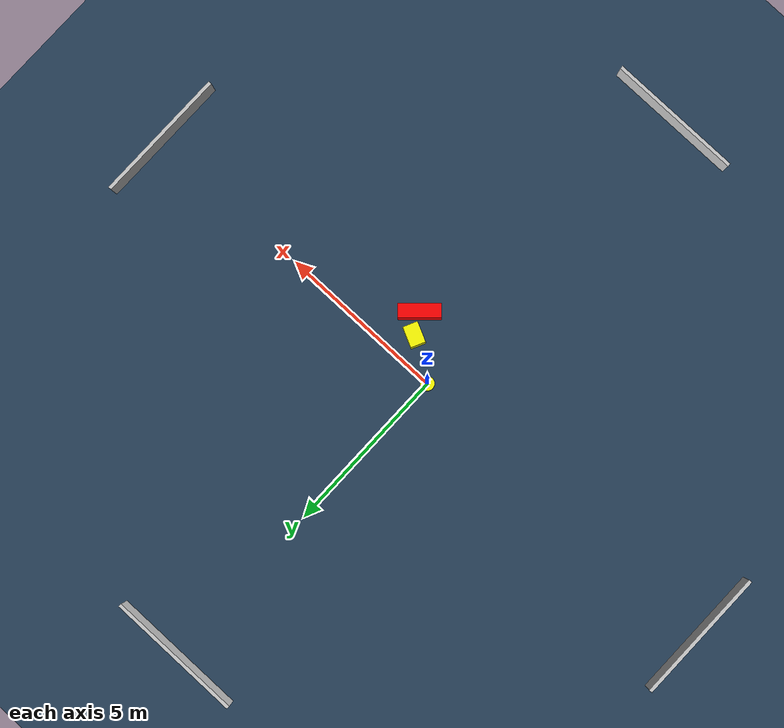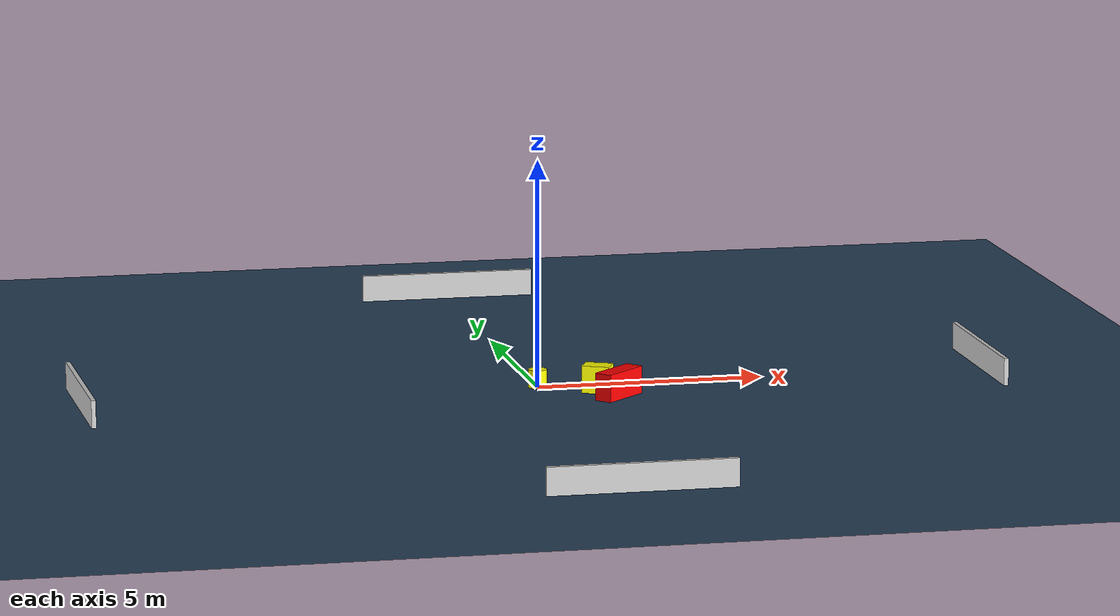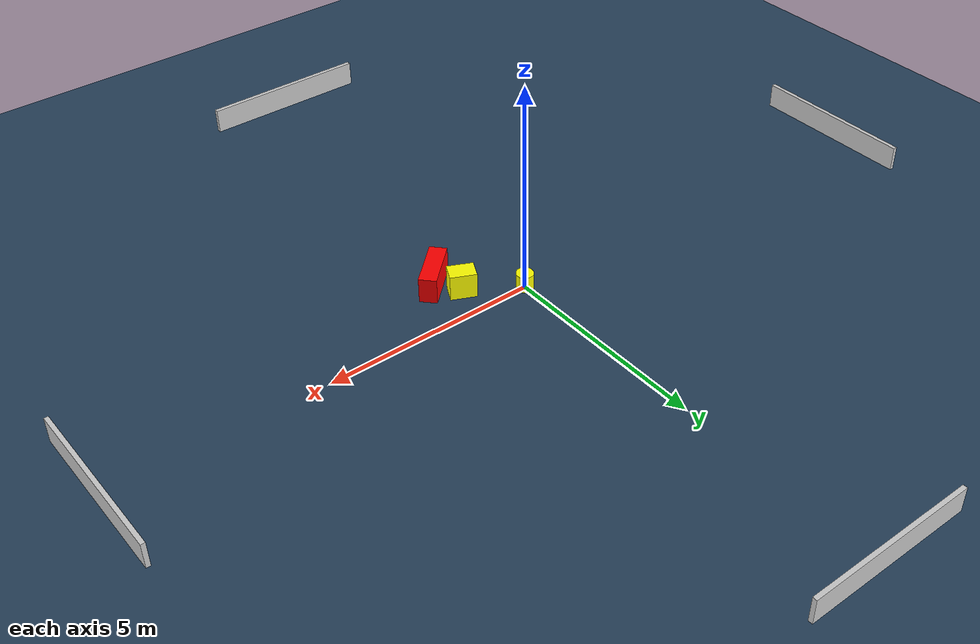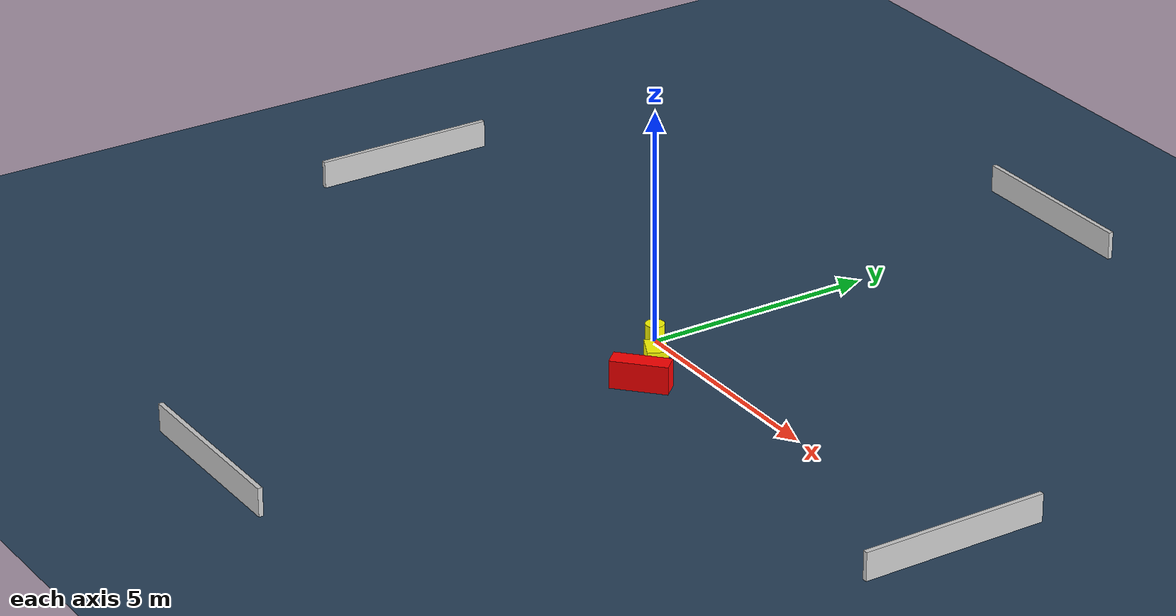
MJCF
<?xml version="1.0" ?>
<mujoco model="generated_environment">
  <option timestep="0.01" integrator="RK4" cone="elliptic"/>
  <default>
    <geom density="1"/>
  </default>
  <asset>
    <texture builtin="gradient" height="3072" name="skybox" rgb1="0.3 0.5 0.7" rgb2="0 0 0" type="skybox" width="512"/>
    <texture builtin="checker" height="300" name="groundplane" rgb1="0.2 0.3 0.4" rgb2="0.1 0.2 0.3" type="2d" width="300"/>
    <material name="groundplane" reflectance="0.2" texrepeat="5 5" texture="groundplane"/>
  </asset>
  <worldbody>
    <light dir="0 0 -1" directional="true" pos="0 0 1.5"/>
    <geom condim="3" friction="0.5 0.005 0.001" material="groundplane" name="floor" pos="0 0 0" size="0 0 0.05" type="plane"/>
    <body name="walls">
      <geom name="wall_1" condim="4" pos="-10.0 0.0 0.3" rgba="0.800000011920929 0.800000011920929 0.800000011920929 1.0" size="0.05 2.0 0.3" type="box"/>
      <geom name="wall_2" condim="4" pos="10.0 0.0 0.3" rgba="0.800000011920929 0.800000011920929 0.800000011920929 1.0" size="0.05 2.0 0.3" type="box"/>
      <geom name="wall_3" condim="4" pos="0.0 -10.0 0.3" rgba="0.800000011920929 0.800000011920929 0.800000011920929 1.0" size="2.0 0.05 0.3" type="box"/>
      <geom name="wall_4" condim="4" pos="0.0 10.0 0.3" rgba="0.800000011920929 0.800000011920929 0.800000011920929 1.0" size="2.0 0.05 0.3" type="box"/>
    </body>
    <body name="robot">
      <joint name="joint_x" type="slide" pos="0 0 0" axis="1 0 0"/>
      <joint name="joint_y" type="slide" pos="0 0 0" axis="0 1 0"/>
      <geom name="robot" type="cylinder" pos="0.0 0.0 0.2" size="0.2 0.2 0.0" mass="5.0" friction="1.0 0.005 0.0001" condim="4" rgba="1.0 1.0 0.0 1.0"/>
    </body>
    <body name="obstacle_1_movable">
      <geom name="obstacle_1_movable" condim="4" pos="1.165815162378835 -0.7256481723627464 0.3" euler="0 0 154.24519631595632" friction="0.0 0.005 0.001" rgba="1.0 1.0 0.0 1.0" size="0.30124618293053274 0.2173703758284877 0.3" type="box" mass="0.1"/>
      <joint type="free"/>
    </body>
    <body name="obstacle_2_static">
      <geom name="obstacle_2_static" condim="4" pos="1.505701235084057 -1.3075678920464953 0.3" euler="0 0 222.6545219332636" friction="0.0 0.005 0.001" rgba="1.0 0.0 0.0 1.0" size="0.6017352451567686 0.2013855332579365 0.3" type="box"/>
    </body>
  </worldbody>
  <actuator>
    <motor name="actuator_x" joint="joint_x" gear="1" ctrlrange="-1 1"/>
    <motor name="actuator_y" joint="joint_y" gear="1" ctrlrange="-1 1"/>
  </actuator>
</mujoco>
